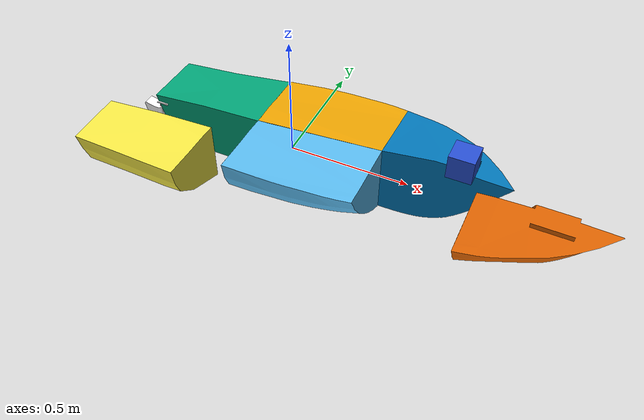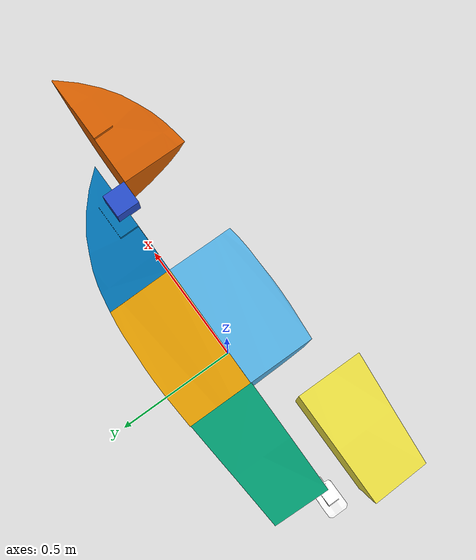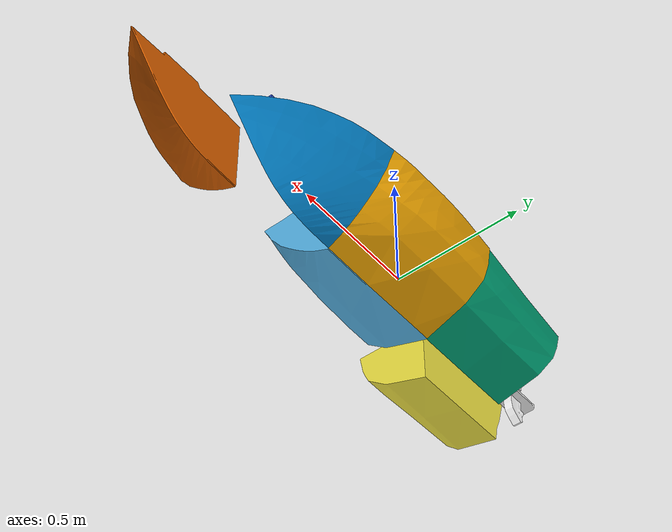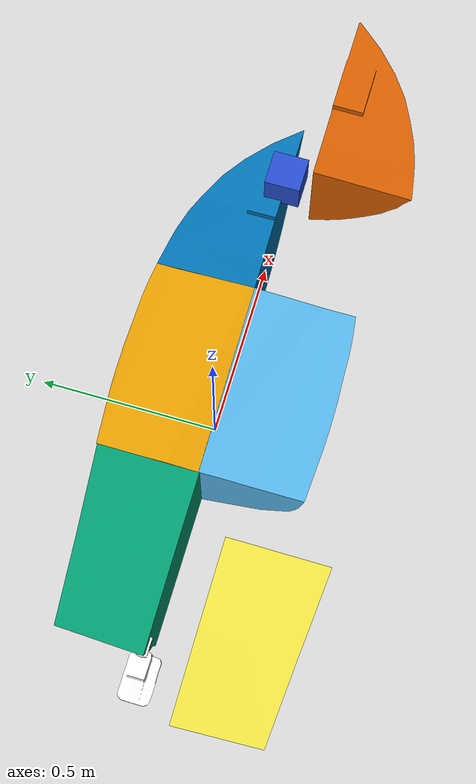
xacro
<?xml version="1.0"?>

<robot name="boat_diff" xmlns:xacro="http://www.ros.org/wiki/xacro">

    <xacro:include filename="$(find usv_sim)/xacro/boat_subdivided3.xacro" />

    <!-- Plugin list -->
    <gazebo>
        <plugin name="freefloating_gazebo_control" filename="libfreefloating_gazebo_control.so">
            <switchService>switch</switchService>
            <updateRate>100</updateRate>
            <link>fwd</link>
            <thruster>
                <effort>300</effort>
                <name>fwd</name>
            </thruster>
        </plugin>
    </gazebo>

    <!-- Define two steering thrusters, with assumed force control in Z-direction -->
   <xacro:thruster_link name="fwd" xyz="-0.45 0.12 -0.15" rpy="0 ${-PI/2} 0" rotationAxis="1 0 0" lowerLimit="-${PI/4}" upperLimit="${PI/4}" effort="500"/>

</robot>

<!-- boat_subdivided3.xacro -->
<xacro xmlns:xacro="http://www.ros.org/wiki/xacro">

    <xacro:property name="PI" value="3.1415926535897931"/>

    <!-- Body properties -->
    <xacro:property name="front_body_mass" value="15"/>
    <xacro:property name="back_body_mass" value="15"/>
    <xacro:property name="middle_body_mass" value="10"/>
    <xacro:property name="rear_body_mass" value="5"/>
    <xacro:property name="front_body_mass" value="2"/>
    <xacro:property name="back_water_displaced_mass" value="40"/>
    <xacro:property name="middle_water_displaced_mass" value="60"/>
    <xacro:property name="front_water_displaced_mass" value="25"/>
    <xacro:property name="scale" value="0.3"/>

    <!-- Thruster constants -->
    <xacro:property name="tr1" value=".02" />
    <xacro:property name="tl1" value=".1" />
    <xacro:property name="tr2" value=".05" />
    <xacro:property name="tl2" value=".03" />
    <xacro:property name="eps" value="0.00000001"/>

    <link name="base_link">
        <visual>
          <origin rpy="0 0 0" xyz="0 0 0"/>
          <geometry>
            <mesh filename="package://usv_sim/meshes/simpleHull2/base_link.obj" scale="${scale} ${scale} ${scale}"/>
          </geometry>
        </visual>
        <collision>
          <origin rpy="0 0 0" xyz="0 0 0"/>
          <geometry>
            <mesh filename="package://usv_sim/meshes/simpleHull2/base_link.obj" scale="${scale} ${scale} ${scale}"/>
          </geometry>
        </collision>

        <inertial>
            <origin rpy="0 0 0" xyz="${0.35*scale} ${0.44*scale} ${-0.2*scale}"/>
          <mass value="${middle_body_mass}"/>
          <inertia ixx="0.1" ixy="0.0" ixz="0.0" iyy="1.4" iyz="0.0" izz="1.4"/>
        </inertial>
        <buoyancy>
          <compensation>${middle_water_displaced_mass/middle_body_mass}</compensation>
          <origin xyz="${0.35*scale} ${0.44*scale} ${-0.15*scale}"/>
          <limit radius="0.1"/>
          <damping rpy="20 20 20" xyz="20 20 50"/>
	  <fluidVelocity>local</fluidVelocity>
        </buoyancy>
    </link>

    <link name="center_r_link">
    	<visual>
          <origin rpy="0 0 0"  xyz="0 0 ${0*scale}"/>
          <geometry>
            <mesh filename="package://usv_sim/meshes/simpleHull2/centerRight.obj" scale="${scale} ${scale} ${scale}"/>
          </geometry>
        </visual>

        <collision>
          <origin rpy="0 0 0"  xyz="0 0 ${0*scale}"/>
          <geometry>
           	<mesh filename="package://usv_sim/meshes/simpleHull2/centerRight.obj" scale="${scale} ${scale} ${scale}"/>
          </geometry>
        </collision>

        <inertial>
            <origin rpy="0 0 0" xyz="${0.35*scale} ${-0.44*scale} ${-0.2*scale}"/>
          <mass value="${middle_body_mass}"/>
          <inertia ixx="0.1" ixy="0.0" ixz="0.0" iyy="1.4" iyz="0.0" izz="1.4"/>
        </inertial>
        <buoyancy>
          <compensation>${middle_water_displaced_mass/middle_body_mass}</compensation>
          <origin xyz="${0.35*scale} ${-0.44*scale} ${-0.15*scale}"/>
          <limit radius="0.1"/>
          <damping rpy="20 20 20" xyz="20 20 50"/>
	  <fluidVelocity>local</fluidVelocity>
        </buoyancy>
    </link>

    <joint name="center_r_joint" type="revolute">
        <parent link="base_link"/>
        <child link="center_r_link"/>
        <origin rpy="0 0 0" xyz="0 0 0"/>
	<limit effort="50" velocity="5" lower="0" upper="0" />
            <dynamics damping="1.0"/>
            <axis xyz="1 0 0"/>
    </joint>

    <link name="back_l_link">
        <visual>
          <origin rpy="0 0 0"  xyz="0 0 0"/>
          <geometry>
           	<mesh filename="package://usv_sim/meshes/simpleHull2/backLeft.obj" scale="${scale} ${scale} ${scale}"/>
          </geometry>
        </visual>
        <collision>
          <origin rpy="0 0 0"  xyz="0 0 0"/>
          <geometry>
           	<mesh filename="package://usv_sim/meshes/simpleHull2/backLeft.obj" scale="${scale} ${scale} ${scale}"/>
          </geometry>
        </collision>

        <inertial>
            <origin rpy="0 0 0" xyz="${-0.6*scale} 0 ${-0.2*scale}"/>
          <mass value="${back_body_mass}"/>
          <inertia ixx="0.1" ixy="0.0" ixz="0.0" iyy="1.4" iyz="0.0" izz="1.4"/>
        </inertial>
        <buoyancy>
          <compensation>${back_water_displaced_mass/back_body_mass}</compensation>
          <origin xyz="${-0.6*scale} 0 ${-0.15*scale}"/>
          <limit radius="0.1"/>
          <damping rpy="20 20 20" xyz="20 20 50"/>
	  <fluidVelocity>local</fluidVelocity>
        </buoyancy>
    </link>

    <joint name="back_l_joint" type="revolute">
        <parent link="base_link"/>
        <child link="back_l_link"/>
        <origin rpy="0 0 0" xyz="${-0.5*scale} ${0.39*scale} 0"/>
	<limit effort="50" velocity="5" lower="0" upper="0" />
            <dynamics damping="1.0"/>
            <axis xyz="1 0 0"/>
    </joint>

    <link name="back_r_link">
    	<visual>
          <origin rpy="0 0 0"  xyz="0 0 0"/>
          <geometry>
           	<mesh filename="package://usv_sim/meshes/simpleHull2/backRight.obj" scale="${scale} ${scale} ${scale}"/>
          </geometry>
    	</visual>
        <collision>
          <origin rpy="0 0 0"  xyz="0 0 0"/>
          <geometry>
           	<mesh filename="package://usv_sim/meshes/simpleHull2/backRight.obj" scale="${scale} ${scale} ${scale}"/>
          </geometry>
        </collision>

        <inertial>
            <origin rpy="0 0 0" xyz="${-0.6*scale} 0 ${-0.2*scale}"/>
          <mass value="${back_body_mass}"/>
          <inertia ixx="0.1" ixy="0.0" ixz="0.0" iyy="1.4" iyz="0.0" izz="1.4"/>
        </inertial>
        <buoyancy>
          <compensation>${back_water_displaced_mass/back_body_mass}</compensation>
          <origin xyz="${-0.6*scale} 0 ${-0.15*scale}"/>
          <limit radius="0.1"/>
          <damping rpy="20 20 20" xyz="20 20 50"/>
	  <fluidVelocity>local</fluidVelocity>
        </buoyancy>
    </link>

    <joint name="back_r_joint" type="revolute">
        <parent link="base_link"/>
        <child link="back_r_link"/>
        <origin rpy="0 0 0" xyz="${-0.5*scale} ${-0.39*scale} 0"/>
	<limit effort="50" velocity="5" lower="0" upper="0" />
            <dynamics damping="1.0"/>
            <axis xyz="1 0 0"/>
    </joint>

    <link name="front_l_link">
    	<visual>
    	<origin rpy="0 0 0"  xyz="0 0 0"/>
          <geometry>
           	<mesh filename="package://usv_sim/meshes/simpleHull2/frontLeft.obj" scale="${scale} ${scale} ${scale}"/>
          </geometry>
    	</visual>
        <collision>
          <origin rpy="0 0 0"  xyz="0 0 0"/>
          <geometry>
           	<mesh filename="package://usv_sim/meshes/simpleHull2/frontLeft.obj" scale="${scale} ${scale} ${scale}"/>
          </geometry>
        </collision>

        <inertial>
            <origin rpy="0 0 0" xyz="${0.4*scale} 0 ${-0.1*scale}"/>
          <mass value="${front_body_mass}"/>
          <inertia ixx="0.1" ixy="0.0" ixz="0.0" iyy="1.4" iyz="0.0" izz="1.4"/>
        </inertial>
        <buoyancy>
          <compensation>${front_water_displaced_mass/front_body_mass}</compensation>
          <origin xyz="${0.4*scale} 0 ${-0.05*scale}"/>
          <limit radius="0.1"/>
          <damping rpy="20 20 20" xyz="20 20 50"/>
	  <fluidVelocity>local</fluidVelocity>
        </buoyancy>
    </link>

    <joint name="front_l_joint" type="revolute">
        <parent link="base_link"/>
        <child link="front_l_link"/>
        <origin rpy="0 0 0" xyz="${1.3*scale} ${0.2*scale} 0"/>
	<limit effort="50" velocity="5" lower="0" upper="0" />
            <dynamics damping="1.0"/>
            <axis xyz="1 0 0"/>
    </joint>

    <link name="front_r_link">
    	<visual>
    		<origin rpy="0 0 0"  xyz="0 0 0"/>
          <geometry>
           	<mesh filename="package://usv_sim/meshes/simpleHull2/frontRight.obj" scale="${scale} ${scale} ${scale}"/>
          </geometry>
        </visual>
        <collision>
          <origin rpy="0 0 0"  xyz="${0*scale} ${0*scale} 0"/>
          <geometry>
           	<mesh filename="package://usv_sim/meshes/simpleHull2/frontRight.obj" scale="${2*scale} ${2*scale} ${2*scale}"/>
          </geometry>
        </collision>

        <inertial>
            <origin rpy="0 0 0" xyz="${0.4*scale} 0 ${-0.1*scale}"/>
          <mass value="${front_body_mass}"/>
          <inertia ixx="0.1" ixy="0.0" ixz="0.0" iyy="1.4" iyz="0.0" izz="1.4"/>
        </inertial>
        <buoyancy>
          <compensation>${front_water_displaced_mass/front_body_mass}</compensation>
          <origin xyz="${0.4*scale} 0 ${-0.05*scale}"/>
          <limit radius="0.1"/>
          <damping rpy="20 20 20" xyz="20 20 50"/>
	  <fluidVelocity>local</fluidVelocity>
        </buoyancy>
    </link>

    <joint name="front_r_joint" type="revolute">
        <parent link="base_link"/>
        <child link="front_r_link"/>
        <origin rpy="0 0 0" xyz="${1.3*scale} ${-0.2*scale} 0"/>
	<limit effort="50" velocity="5" lower="0" upper="0" />
            <dynamics damping="1.0"/>
            <axis xyz="1 0 0"/>
    </joint>

    <!-- Thruster link -->
    <xacro:macro name="thruster_link" params="name xyz rpy rotationAxis effort:=50 velocity:=5 lowerLimit upperLimit parentLink:=back_r_link">
        <joint name="${name}_joint" type="revolute">
            <parent link="${parentLink}"/>
            <child link="${name}"/>
            <origin rpy="${rpy}" xyz="${xyz}"/>
            <dynamics damping="10.0"/>
            <axis xyz="${rotationAxis}"/>
            <limit effort="${effort}" velocity="${velocity}" lower="${lowerLimit}" upper="${upperLimit}" />
        </joint>

        <link name="${name}">
            <buoyancy>
				<compensation>1.0</compensation>
	        	<fluidVelocity>local</fluidVelocity>
	    	</buoyancy>
	    	<collision>
          		<origin xyz="0 0 0" rpy="0 0 0"/>
          		<geometry>
          		    <mesh filename="package://usv_sim/meshes/simpleHull/thruster.obj" scale="${scale} ${scale} ${scale}"/>
          		</geometry>
        	</collision>

            <visual name="${name}">
                <origin xyz="0 0 0" rpy="0 0 0" />
                <geometry>
                    <mesh filename="package://usv_sim/meshes/simpleHull/thruster.obj" scale="${scale} ${scale} ${scale}"/>
                </geometry>
                <material name="black">
                    <color rgba="255 255 255 1"/>
                </material>
            </visual>

            <inertial>
                <mass value="5"/>
                <origin xyz="${0.2*scale} 0 ${0.2*scale}" rpy="0 0 0" />
                <inertia
                    ixx=".1"
                    ixy="0.0"
                    ixz="0.0"
                    iyy=".1"
                    iyz="0.0"
                    izz=".1"/>
            </inertial>
        </link>

        <gazebo reference="${name}">
            <material>Gazebo/Black</material>
        </gazebo>
    </xacro:macro>

    <xacro:macro name="thruster_dummy_link" params="name xyz rpy">
        <joint name="${name}" type="fixed">
            <parent link="base_link"/>
            <child link="${name}"/>
            <origin rpy="${rpy}" xyz="${xyz}"/>
        </joint>
        <link name="${name}"/>
    </xacro:macro>

    <!-- Thruster link -->
    <xacro:macro name="airthruster_link" params="name xyz rpy rotationAxis effort:=50 velocity:=5 lowerLimit upperLimit parentLink:=back_r_link">
        <joint name="${name}_joint" type="revolute">
            <parent link="${parentLink}"/>
            <child link="${name}"/>
            <origin rpy="${rpy}" xyz="${xyz}"/>
            <dynamics damping="10.0"/>
            <axis xyz="${rotationAxis}"/>
            <limit effort="${effort}" velocity="${velocity}" lower="${lowerLimit}" upper="${upperLimit}" />
        </joint>

        <link name="${name}">
            <buoyancy>
				<compensation>1.0</compensation>
	        	<fluidVelocity>local</fluidVelocity>
	    	</buoyancy>
	    	<collision>
          		<origin xyz="0 0 0" rpy="0 0 0"/>
          		<geometry>
          			<box size="${tl1} ${tl1} ${tl2}" />
          		</geometry>
        	</collision>

            <visual name="${name}">
                <origin xyz="0 0 0" rpy="0 0 0" />
                <geometry>
                    <mesh filename="package://usv_sim/meshes/simpleHull/airPropeller.obj" scale="${scale} ${scale} ${scale}"/>
                </geometry>
            </visual>

            <inertial>
                <mass value=".1"/>
                <inertia
                    ixx=".1"
                    ixy="0.0"
                    ixz="0.0"
                    iyy=".1"
                    iyz="0.0"
                    izz=".1"/>
            </inertial>
        </link>

        <gazebo reference="${name}">
            <material>Gazebo/Black</material>
        </gazebo>
    </xacro:macro>

    <xacro:macro name="thruster_dummy_link" params="name xyz rpy">
        <joint name="${name}" type="fixed">
            <parent link="base_link"/>
            <child link="${name}"/>
            <origin rpy="${rpy}" xyz="${xyz}"/>
        </joint>
        <link name="${name}"/>
    </xacro:macro>

    <!-- Rudder link -->
    <xacro:macro name="rudder_xacro">
        <link name="rudder">
            <inertial>
                <mass value="0.05" />
                <inertia
                  ixx="0.05"
                  ixy="0.0"
                  iyy="0.05"
                  ixz="0.0"
                  iyz="0.0"
                  izz="0.005"/>
            </inertial>

            <collision name="collision">
                <geometry>
                  <box size="${0.2*scale} ${0.02*scale} ${0.3*scale}" />
                </geometry>
                <origin rpy="0 0 0" xyz="${-0.1*scale} 0 0"/>
            </collision>

            <visual name="visual">
                <geometry>
                  <mesh filename="package://usv_sim/meshes/simpleHull/box.obj" scale="${0.2*scale} ${0.02*scale} ${0.3*scale}"/>
                </geometry>
                <origin rpy="0 0 0" xyz="${-0.1*scale} 0 0"/>
                <material name="blue"/>
            </visual>
        </link>

        <joint name="rudder_joint" type="revolute">
            <parent link="back_r_link"/>
            <child link="rudder"/>
            <origin rpy="0 0 0" xyz="${-1.4*scale} ${0.22*scale} ${-0.5*scale}"/>
            <dynamics damping="1.0"/>
            <axis xyz="0 0 1"/>
            <limit effort="50" velocity="5" lower="-${PI/3}" upper="${PI/3}" />
        </joint>
    </xacro:macro>

    <!-- Sensors -->

    <!-- Hokuyo Laser -->
    <joint name="hokuyo_joint" type="fixed">
        <axis xyz="0 1 0" />
        <origin xyz="0.7 0 0.2" rpy="0 0 0"/>
        <parent link="base_link"/>
        <child link="hokuyo_link"/>
    </joint>

    <link name="hokuyo_link">
        <collision name="collision">
	        <origin xyz="0 0 0" rpy="0 0 0"/>
	        <geometry>
	        	<box size="0.1 0.1 0.1"/>
	        </geometry>
        </collision>

        <visual name="visual">
        	<origin xyz="0 0 0" rpy="0 0 0"/>
        	<geometry>
        		<mesh filename="package://usv_sim/meshes/simpleHull/box.obj" scale="0.1 0.1 0.1"/>
        	</geometry>
        	<material name="blue"/>
        </visual>

        <inertial>
        <mass value="1e-5" />
        <origin xyz="0 0 0" rpy="0 0 0"/>
        <inertia ixx="1e-6" ixy="0" ixz="0" iyy="1e-6" iyz="0" izz="1e-6" />
        </inertial>
    </link>

    <gazebo reference="hokuyo_link">
        <sensor type="gpu_ray" name="head_hokuyo_sensor">
        <pose>0 0 0 0 0 0</pose>
        <visualize>true</visualize>
        <update_rate>40</update_rate>
        <ray>
        <scan>
        <horizontal>
        <samples>720</samples>
        <resolution>1</resolution>
        <min_angle>-1.570796</min_angle>
        <max_angle>1.570796</max_angle>
        </horizontal>
        </scan>
        <range>
        <min>0.10</min>
        <max>30.0</max>
        <resolution>0.01</resolution>
        </range>
        <noise>
        <type>gaussian</type>
        <mean>0.0</mean>
        <stddev>0.01</stddev>
        </noise>
        </ray>
        <plugin name="gazebo_ros_head_hokuyo_controller" filename="libgazebo_ros_gpu_laser.so">
        <topicName>scan</topicName>
        <frameName>base_laser</frameName>
        </plugin>
        </sensor>
    </gazebo>

</xacro>
